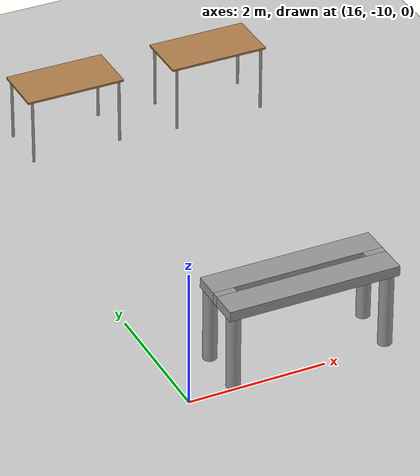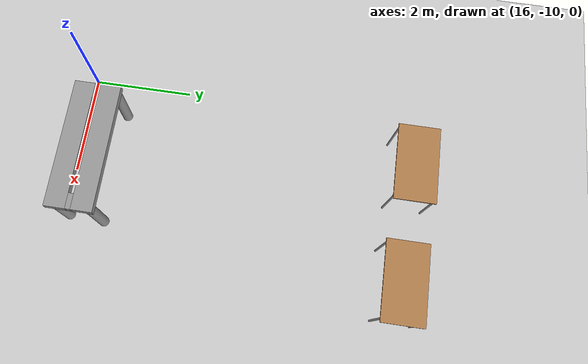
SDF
<sdf version="1.6">
 <world name="default">
  <model name="ground_plane">
   <static>1</static>
   <link name="link">
    <collision name="collision">
     <geometry><plane><normal>0 0 1</normal><size>100 100</size></plane></geometry>
     <surface><friction><ode><mu>100</mu><mu2>50</mu2></ode></friction></surface>
    </collision>
    <visual name="visual">
     <cast_shadows>0</cast_shadows>
     <geometry><plane><normal>0 0 1</normal><size>100 100</size></plane></geometry>
     <material>
      <script><uri>file://media/materials/scripts/gazebo.material</uri><name>Gazebo/Grey</name></script>
     </material>
    </visual>
   </link>
  </model>
  <model name="table_9">
   <static>1</static>
   <link name="link">
    <collision name="surface">
     <pose>0 0 1 0 -0 0</pose>
     <geometry><box><size>1.5 0.8 0.03</size></box></geometry>
     <surface><friction><ode><mu>0.6</mu><mu2>0.6</mu2></ode></friction></surface>
    </collision>
    <visual name="visual1">
     <pose>0 0 1 0 -0 0</pose>
     <geometry><box><size>1.5 0.8 0.03</size></box></geometry>
     <material>
      <script><uri>file://media/materials/scripts/gazebo.material</uri><name>Gazebo/Wood</name></script>
     </material>
    </visual>
    <collision name="front_left_leg">
     <pose>0.68 0.38 0.5 0 -0 0</pose>
     <geometry><cylinder><radius>0.02</radius><length>1</length></cylinder></geometry>
    </collision>
    <visual name="front_left_leg">
     <pose>0.68 0.38 0.5 0 -0 0</pose>
     <geometry><cylinder><radius>0.02</radius><length>1</length></cylinder></geometry>
     <material>
      <script><uri>file://media/materials/scripts/gazebo.material</uri><name>Gazebo/Grey</name></script>
     </material>
    </visual>
    <collision name="front_right_leg">
     <pose>0.68 -0.38 0.5 0 -0 0</pose>
     <geometry><cylinder><radius>0.02</radius><length>1</length></cylinder></geometry>
    </collision>
    <visual name="front_right_leg">
     <pose>0.68 -0.38 0.5 0 -0 0</pose>
     <geometry><cylinder><radius>0.02</radius><length>1</length></cylinder></geometry>
     <material>
      <script><uri>file://media/materials/scripts/gazebo.material</uri><name>Gazebo/Grey</name></script>
     </material>
    </visual>
    <collision name="back_right_leg">
     <pose>-0.68 -0.38 0.5 0 -0 0</pose>
     <geometry><cylinder><radius>0.02</radius><length>1</length></cylinder></geometry>
    </collision>
    <visual name="back_right_leg">
     <pose>-0.68 -0.38 0.5 0 -0 0</pose>
     <geometry><cylinder><radius>0.02</radius><length>1</length></cylinder></geometry>
     <material>
      <script><uri>file://media/materials/scripts/gazebo.material</uri><name>Gazebo/Grey</name></script>
     </material>
    </visual>
    <collision name="back_left_leg">
     <pose>-0.68 0.38 0.5 0 -0 0</pose>
     <geometry><cylinder><radius>0.02</radius><length>1</length></cylinder></geometry>
    </collision>
    <visual name="back_left_leg">
     <pose>-0.68 0.38 0.5 0 -0 0</pose>
     <geometry><cylinder><radius>0.02</radius><length>1</length></cylinder></geometry>
     <material>
      <script><uri>file://media/materials/scripts/gazebo.material</uri><name>Gazebo/Grey</name></script>
     </material>
    </visual>
   </link>
   <pose>17.1959 -3.33595 0 0 -0 0</pose>
  </model>
  <model name="table_10">
   <static>1</static>
   <link name="link">
    <collision name="surface">
     <pose>0 0 1 0 -0 0</pose>
     <geometry><box><size>1.5 0.8 0.03</size></box></geometry>
     <surface><friction><ode><mu>0.6</mu><mu2>0.6</mu2></ode></friction></surface>
    </collision>
    <visual name="visual1">
     <pose>0 0 1 0 -0 0</pose>
     <geometry><box><size>1.5 0.8 0.03</size></box></geometry>
     <material>
      <script><uri>file://media/materials/scripts/gazebo.material</uri><name>Gazebo/Wood</name></script>
     </material>
    </visual>
    <collision name="front_left_leg">
     <pose>0.68 0.38 0.5 0 -0 0</pose>
     <geometry><cylinder><radius>0.02</radius><length>1</length></cylinder></geometry>
    </collision>
    <visual name="front_left_leg">
     <pose>0.68 0.38 0.5 0 -0 0</pose>
     <geometry><cylinder><radius>0.02</radius><length>1</length></cylinder></geometry>
     <material>
      <script><uri>file://media/materials/scripts/gazebo.material</uri><name>Gazebo/Grey</name></script>
     </material>
    </visual>
    <collision name="front_right_leg">
     <pose>0.68 -0.38 0.5 0 -0 0</pose>
     <geometry><cylinder><radius>0.02</radius><length>1</length></cylinder></geometry>
    </collision>
    <visual name="front_right_leg">
     <pose>0.68 -0.38 0.5 0 -0 0</pose>
     <geometry><cylinder><radius>0.02</radius><length>1</length></cylinder></geometry>
     <material>
      <script><uri>file://media/materials/scripts/gazebo.material</uri><name>Gazebo/Grey</name></script>
     </material>
    </visual>
    <collision name="back_right_leg">
     <pose>-0.68 -0.38 0.5 0 -0 0</pose>
     <geometry><cylinder><radius>0.02</radius><length>1</length></cylinder></geometry>
    </collision>
    <visual name="back_right_leg">
     <pose>-0.68 -0.38 0.5 0 -0 0</pose>
     <geometry><cylinder><radius>0.02</radius><length>1</length></cylinder></geometry>
     <material>
      <script><uri>file://media/materials/scripts/gazebo.material</uri><name>Gazebo/Grey</name></script>
     </material>
    </visual>
    <collision name="back_left_leg">
     <pose>-0.68 0.38 0.5 0 -0 0</pose>
     <geometry><cylinder><radius>0.02</radius><length>1</length></cylinder></geometry>
    </collision>
    <visual name="back_left_leg">
     <pose>-0.68 0.38 0.5 0 -0 0</pose>
     <geometry><cylinder><radius>0.02</radius><length>1</length></cylinder></geometry>
     <material>
      <script><uri>file://media/materials/scripts/gazebo.material</uri><name>Gazebo/Grey</name></script>
     </material>
    </visual>
   </link>
   <pose>19.4515 -3.39812 0 0 -0 0</pose>
  </model>
  <model name="work_table_3">
   <link name="link_0">
    <pose>1.115 -0.35 -0.3125 0 -0 0</pose>
    <inertial>
     <mass>1</mass>
     <inertia><ixx>0.145833</ixx><ixy>0</ixy><ixz>0</ixz><iyy>0.145833</iyy><iyz>0</iyz><izz>0.125</izz></inertia>
    </inertial>
    <visual name="visual">
     <geometry><cylinder><radius>0.1</radius><length>1.1</length></cylinder></geometry>
     <material>
      <lighting>1</lighting>
      <script><uri>file://media/materials/scripts/gazebo.material</uri><name>Gazebo/Grey</name></script>
      <ambient>0.3 0.3 0.3 1</ambient>
      <diffuse>0.7 0.7 0.7 1</diffuse>
      <specular>0.01 0.01 0.01 1</specular>
      <emissive>0 0 0 1</emissive>
      <shader type="vertex"><normal_map>__default__</normal_map></shader>
     </material>
    </visual>
    <collision name="collision">
     <geometry><cylinder><radius>0.1</radius><length>1.1</length></cylinder></geometry>
     <surface>
      <friction>
       <ode><mu>1</mu><mu2>1</mu2><fdir1>0 0 0</fdir1><slip1>0</slip1><slip2>0</slip2></ode>
       <torsional>
        <coefficient>1</coefficient>
        <patch_radius>0</patch_radius>
        <surface_radius>0</surface_radius>
        <use_patch_radius>1</use_patch_radius>
        <ode><slip>0</slip></ode>
       </torsional>
      </friction>
      <bounce><restitution_coefficient>0</restitution_coefficient><threshold>1e+06</threshold></bounce>
      <contact>
       <collide_without_contact>0</collide_without_contact>
       <collide_without_contact_bitmask>1</collide_without_contact_bitmask>
       <collide_bitmask>1</collide_bitmask>
       <ode>
        <soft_cfm>0</soft_cfm>
        <soft_erp>0.2</soft_erp>
        <kp>1e+13</kp>
        <kd>1</kd>
        <max_vel>0.01</max_vel>
        <min_depth>0</min_depth>
       </ode>
       <bullet>
        <split_impulse>1</split_impulse>
        <split_impulse_penetration_threshold>-0.01</split_impulse_penetration_threshold>
        <soft_cfm>0</soft_cfm>
        <soft_erp>0.2</soft_erp>
        <kp>1e+13</kp>
        <kd>1</kd>
       </bullet>
      </contact>
     </surface>
    </collision>
   </link>
   <link name="link_0_clone">
    <pose>-1.145 -0.35 -0.3125 0 -0 0</pose>
    <inertial>
     <mass>1</mass>
     <inertia><ixx>0.145833</ixx><ixy>0</ixy><ixz>0</ixz><iyy>0.145833</iyy><iyz>0</iyz><izz>0.125</izz></inertia>
    </inertial>
    <visual name="visual">
     <geometry><cylinder><radius>0.1</radius><length>1.1</length></cylinder></geometry>
     <material>
      <lighting>1</lighting>
      <script><uri>file://media/materials/scripts/gazebo.material</uri><name>Gazebo/Grey</name></script>
      <ambient>0.3 0.3 0.3 1</ambient>
      <diffuse>0.7 0.7 0.7 1</diffuse>
      <specular>0.01 0.01 0.01 1</specular>
      <emissive>0 0 0 1</emissive>
      <shader type="vertex"><normal_map>__default__</normal_map></shader>
     </material>
    </visual>
    <collision name="collision">
     <geometry><cylinder><radius>0.1</radius><length>1.1</length></cylinder></geometry>
     <surface>
      <friction>
       <ode><mu>1</mu><mu2>1</mu2><fdir1>0 0 0</fdir1><slip1>0</slip1><slip2>0</slip2></ode>
       <torsional>
        <coefficient>1</coefficient>
        <patch_radius>0</patch_radius>
        <surface_radius>0</surface_radius>
        <use_patch_radius>1</use_patch_radius>
        <ode><slip>0</slip></ode>
       </torsional>
      </friction>
      <bounce><restitution_coefficient>0</restitution_coefficient><threshold>1e+06</threshold></bounce>
      <contact>
       <collide_without_contact>0</collide_without_contact>
       <collide_without_contact_bitmask>1</collide_without_contact_bitmask>
       <collide_bitmask>1</collide_bitmask>
       <ode>
        <soft_cfm>0</soft_cfm>
        <soft_erp>0.2</soft_erp>
        <kp>1e+13</kp>
        <kd>1</kd>
        <max_vel>0.01</max_vel>
        <min_depth>0</min_depth>
       </ode>
       <bullet>
        <split_impulse>1</split_impulse>
        <split_impulse_penetration_threshold>-0.01</split_impulse_penetration_threshold>
        <soft_cfm>0</soft_cfm>
        <soft_erp>0.2</soft_erp>
        <kp>1e+13</kp>
        <kd>1</kd>
       </bullet>
      </contact>
     </surface>
    </collision>
   </link>
   <link name="link_0_clone_0">
    <pose>-1.145 0.35 -0.3125 0 -0 0</pose>
    <inertial>
     <mass>1</mass>
     <inertia><ixx>0.145833</ixx><ixy>0</ixy><ixz>0</ixz><iyy>0.145833</iyy><iyz>0</iyz><izz>0.125</izz></inertia>
    </inertial>
    <visual name="visual">
     <geometry><cylinder><radius>0.1</radius><length>1.1</length></cylinder></geometry>
     <material>
      <lighting>1</lighting>
      <script><uri>file://media/materials/scripts/gazebo.material</uri><name>Gazebo/Grey</name></script>
      <ambient>0.3 0.3 0.3 1</ambient>
      <diffuse>0.7 0.7 0.7 1</diffuse>
      <specular>0.01 0.01 0.01 1</specular>
      <emissive>0 0 0 1</emissive>
      <shader type="vertex"><normal_map>__default__</normal_map></shader>
     </material>
    </visual>
    <collision name="collision">
     <geometry><cylinder><radius>0.1</radius><length>1.1</length></cylinder></geometry>
     <surface>
      <friction>
       <ode><mu>1</mu><mu2>1</mu2><fdir1>0 0 0</fdir1><slip1>0</slip1><slip2>0</slip2></ode>
       <torsional>
        <coefficient>1</coefficient>
        <patch_radius>0</patch_radius>
        <surface_radius>0</surface_radius>
        <use_patch_radius>1</use_patch_radius>
        <ode><slip>0</slip></ode>
       </torsional>
      </friction>
      <bounce><restitution_coefficient>0</restitution_coefficient><threshold>1e+06</threshold></bounce>
      <contact>
       <collide_without_contact>0</collide_without_contact>
       <collide_without_contact_bitmask>1</collide_without_contact_bitmask>
       <collide_bitmask>1</collide_bitmask>
       <ode>
        <soft_cfm>0</soft_cfm>
        <soft_erp>0.2</soft_erp>
        <kp>1e+13</kp>
        <kd>1</kd>
        <max_vel>0.01</max_vel>
        <min_depth>0</min_depth>
       </ode>
       <bullet>
        <split_impulse>1</split_impulse>
        <split_impulse_penetration_threshold>-0.01</split_impulse_penetration_threshold>
        <soft_cfm>0</soft_cfm>
        <soft_erp>0.2</soft_erp>
        <kp>1e+13</kp>
        <kd>1</kd>
       </bullet>
      </contact>
     </surface>
    </collision>
   </link>
   <link name="link_0_clone_1">
    <pose>1.155 0.35 -0.3125 0 -0 0</pose>
    <inertial>
     <mass>1</mass>
     <inertia><ixx>0.145833</ixx><ixy>0</ixy><ixz>0</ixz><iyy>0.145833</iyy><iyz>0</iyz><izz>0.125</izz></inertia>
    </inertial>
    <visual name="visual">
     <geometry><cylinder><radius>0.1</radius><length>1.1</length></cylinder></geometry>
     <material>
      <lighting>1</lighting>
      <script><uri>file://media/materials/scripts/gazebo.material</uri><name>Gazebo/Grey</name></script>
      <ambient>0.3 0.3 0.3 1</ambient>
      <diffuse>0.7 0.7 0.7 1</diffuse>
      <specular>0.01 0.01 0.01 1</specular>
      <emissive>0 0 0 1</emissive>
      <shader type="vertex"><normal_map>__default__</normal_map></shader>
     </material>
    </visual>
    <collision name="collision">
     <geometry><cylinder><radius>0.1</radius><length>1.1</length></cylinder></geometry>
     <surface>
      <friction>
       <ode><mu>1</mu><mu2>1</mu2><fdir1>0 0 0</fdir1><slip1>0</slip1><slip2>0</slip2></ode>
       <torsional>
        <coefficient>1</coefficient>
        <patch_radius>0</patch_radius>
        <surface_radius>0</surface_radius>
        <use_patch_radius>1</use_patch_radius>
        <ode><slip>0</slip></ode>
       </torsional>
      </friction>
      <bounce><restitution_coefficient>0</restitution_coefficient><threshold>1e+06</threshold></bounce>
      <contact>
       <collide_without_contact>0</collide_without_contact>
       <collide_without_contact_bitmask>1</collide_without_contact_bitmask>
       <collide_bitmask>1</collide_bitmask>
       <ode>
        <soft_cfm>0</soft_cfm>
        <soft_erp>0.2</soft_erp>
        <kp>1e+13</kp>
        <kd>1</kd>
        <max_vel>0.01</max_vel>
        <min_depth>0</min_depth>
       </ode>
       <bullet>
        <split_impulse>1</split_impulse>
        <split_impulse_penetration_threshold>-0.01</split_impulse_penetration_threshold>
        <soft_cfm>0</soft_cfm>
        <soft_erp>0.2</soft_erp>
        <kp>1e+13</kp>
        <kd>1</kd>
       </bullet>
      </contact>
     </surface>
    </collision>
   </link>
   <link name="link_1">
    <pose>0.005 -0.25 0.3125 0 -0 0</pose>
    <inertial>
     <mass>1</mass>
     <inertia>
      <ixx>0.166667</ixx>
      <ixy>0</ixy>
      <ixz>0</ixz>
      <iyy>0.166667</iyy>
      <iyz>0</iyz>
      <izz>0.166667</izz>
     </inertia>
    </inertial>
    <visual name="visual">
     <geometry><box><size>2.5 0.4 0.15</size></box></geometry>
     <material>
      <lighting>1</lighting>
      <script><uri>file://media/materials/scripts/gazebo.material</uri><name>Gazebo/Grey</name></script>
      <ambient>0.3 0.3 0.3 1</ambient>
      <diffuse>0.7 0.7 0.7 1</diffuse>
      <specular>0.01 0.01 0.01 1</specular>
      <emissive>0 0 0 1</emissive>
      <shader type="vertex"><normal_map>__default__</normal_map></shader>
     </material>
    </visual>
    <collision name="collision">
     <geometry><box><size>2.5 0.4 0.15</size></box></geometry>
     <surface>
      <friction>
       <ode><mu>1</mu><mu2>1</mu2><fdir1>0 0 0</fdir1><slip1>0</slip1><slip2>0</slip2></ode>
       <torsional>
        <coefficient>1</coefficient>
        <patch_radius>0</patch_radius>
        <surface_radius>0</surface_radius>
        <use_patch_radius>1</use_patch_radius>
        <ode><slip>0</slip></ode>
       </torsional>
      </friction>
      <bounce><restitution_coefficient>0</restitution_coefficient><threshold>1e+06</threshold></bounce>
      <contact>
       <collide_without_contact>0</collide_without_contact>
       <collide_without_contact_bitmask>1</collide_without_contact_bitmask>
       <collide_bitmask>1</collide_bitmask>
       <ode>
        <soft_cfm>0</soft_cfm>
        <soft_erp>0.2</soft_erp>
        <kp>1e+13</kp>
        <kd>1</kd>
        <max_vel>0.01</max_vel>
        <min_depth>0</min_depth>
       </ode>
       <bullet>
        <split_impulse>1</split_impulse>
        <split_impulse_penetration_threshold>-0.01</split_impulse_penetration_threshold>
        <soft_cfm>0</soft_cfm>
        <soft_erp>0.2</soft_erp>
        <kp>1e+13</kp>
        <kd>1</kd>
       </bullet>
      </contact>
     </surface>
    </collision>
   </link>
   <link name="link_1_clone">
    <pose>0.005 0.25 0.3125 0 -0 0</pose>
    <inertial>
     <mass>1</mass>
     <inertia>
      <ixx>0.166667</ixx>
      <ixy>0</ixy>
      <ixz>0</ixz>
      <iyy>0.166667</iyy>
      <iyz>0</iyz>
      <izz>0.166667</izz>
     </inertia>
    </inertial>
    <visual name="visual">
     <geometry><box><size>2.5 0.4 0.15</size></box></geometry>
     <material>
      <lighting>1</lighting>
      <script><uri>file://media/materials/scripts/gazebo.material</uri><name>Gazebo/Grey</name></script>
      <ambient>0.3 0.3 0.3 1</ambient>
      <diffuse>0.7 0.7 0.7 1</diffuse>
      <specular>0.01 0.01 0.01 1</specular>
      <emissive>0 0 0 1</emissive>
      <shader type="vertex"><normal_map>__default__</normal_map></shader>
     </material>
    </visual>
    <collision name="collision">
     <geometry><box><size>2.5 0.4 0.15</size></box></geometry>
     <surface>
      <friction>
       <ode><mu>1</mu><mu2>1</mu2><fdir1>0 0 0</fdir1><slip1>0</slip1><slip2>0</slip2></ode>
       <torsional>
        <coefficient>1</coefficient>
        <patch_radius>0</patch_radius>
        <surface_radius>0</surface_radius>
        <use_patch_radius>1</use_patch_radius>
        <ode><slip>0</slip></ode>
       </torsional>
      </friction>
      <bounce><restitution_coefficient>0</restitution_coefficient><threshold>1e+06</threshold></bounce>
      <contact>
       <collide_without_contact>0</collide_without_contact>
       <collide_without_contact_bitmask>1</collide_without_contact_bitmask>
       <collide_bitmask>1</collide_bitmask>
       <ode>
        <soft_cfm>0</soft_cfm>
        <soft_erp>0.2</soft_erp>
        <kp>1e+13</kp>
        <kd>1</kd>
        <max_vel>0.01</max_vel>
        <min_depth>0</min_depth>
       </ode>
       <bullet>
        <split_impulse>1</split_impulse>
        <split_impulse_penetration_threshold>-0.01</split_impulse_penetration_threshold>
        <soft_cfm>0</soft_cfm>
        <soft_erp>0.2</soft_erp>
        <kp>1e+13</kp>
        <kd>1</kd>
       </bullet>
      </contact>
     </surface>
    </collision>
   </link>
   <link name="link_1_clone_0">
    <pose>-1.095 0 0.3125 0 -0 0</pose>
    <inertial>
     <mass>1</mass>
     <inertia>
      <ixx>0.166667</ixx>
      <ixy>0</ixy>
      <ixz>0</ixz>
      <iyy>0.166667</iyy>
      <iyz>0</iyz>
      <izz>0.166667</izz>
     </inertia>
    </inertial>
    <visual name="visual">
     <geometry><box><size>0.3 0.1 0.15</size></box></geometry>
     <material>
      <lighting>1</lighting>
      <script><uri>file://media/materials/scripts/gazebo.material</uri><name>Gazebo/Grey</name></script>
      <ambient>0.3 0.3 0.3 1</ambient>
      <diffuse>0.7 0.7 0.7 1</diffuse>
      <specular>0.01 0.01 0.01 1</specular>
      <emissive>0 0 0 1</emissive>
      <shader type="vertex"><normal_map>__default__</normal_map></shader>
     </material>
    </visual>
    <collision name="collision">
     <geometry><box><size>0.3 0.1 0.15</size></box></geometry>
     <surface>
      <friction>
       <ode><mu>1</mu><mu2>1</mu2><fdir1>0 0 0</fdir1><slip1>0</slip1><slip2>0</slip2></ode>
       <torsional>
        <coefficient>1</coefficient>
        <patch_radius>0</patch_radius>
        <surface_radius>0</surface_radius>
        <use_patch_radius>1</use_patch_radius>
        <ode><slip>0</slip></ode>
       </torsional>
      </friction>
      <bounce><restitution_coefficient>0</restitution_coefficient><threshold>1e+06</threshold></bounce>
      <contact>
       <collide_without_contact>0</collide_without_contact>
       <collide_without_contact_bitmask>1</collide_without_contact_bitmask>
       <collide_bitmask>1</collide_bitmask>
       <ode>
        <soft_cfm>0</soft_cfm>
        <soft_erp>0.2</soft_erp>
        <kp>1e+13</kp>
        <kd>1</kd>
        <max_vel>0.01</max_vel>
        <min_depth>0</min_depth>
       </ode>
       <bullet>
        <split_impulse>1</split_impulse>
        <split_impulse_penetration_threshold>-0.01</split_impulse_penetration_threshold>
        <soft_cfm>0</soft_cfm>
        <soft_erp>0.2</soft_erp>
        <kp>1e+13</kp>
        <kd>1</kd>
       </bullet>
      </contact>
     </surface>
    </collision>
   </link>
   <link name="link_1_clone_0_clone">
    <pose>1.105 0 0.3125 0 -0 0</pose>
    <inertial>
     <mass>1</mass>
     <inertia>
      <ixx>0.166667</ixx>
      <ixy>0</ixy>
      <ixz>0</ixz>
      <iyy>0.166667</iyy>
      <iyz>0</iyz>
      <izz>0.166667</izz>
     </inertia>
    </inertial>
    <visual name="visual">
     <geometry><box><size>0.3 0.1 0.15</size></box></geometry>
     <material>
      <lighting>1</lighting>
      <script><uri>file://media/materials/scripts/gazebo.material</uri><name>Gazebo/Grey</name></script>
      <ambient>0.3 0.3 0.3 1</ambient>
      <diffuse>0.7 0.7 0.7 1</diffuse>
      <specular>0.01 0.01 0.01 1</specular>
      <emissive>0 0 0 1</emissive>
      <shader type="vertex"><normal_map>__default__</normal_map></shader>
     </material>
    </visual>
    <collision name="collision">
     <geometry><box><size>0.3 0.1 0.15</size></box></geometry>
     <surface>
      <friction>
       <ode><mu>1</mu><mu2>1</mu2><fdir1>0 0 0</fdir1><slip1>0</slip1><slip2>0</slip2></ode>
       <torsional>
        <coefficient>1</coefficient>
        <patch_radius>0</patch_radius>
        <surface_radius>0</surface_radius>
        <use_patch_radius>1</use_patch_radius>
        <ode><slip>0</slip></ode>
       </torsional>
      </friction>
      <bounce><restitution_coefficient>0</restitution_coefficient><threshold>1e+06</threshold></bounce>
      <contact>
       <collide_without_contact>0</collide_without_contact>
       <collide_without_contact_bitmask>1</collide_without_contact_bitmask>
       <collide_bitmask>1</collide_bitmask>
       <ode>
        <soft_cfm>0</soft_cfm>
        <soft_erp>0.2</soft_erp>
        <kp>1e+13</kp>
        <kd>1</kd>
        <max_vel>0.01</max_vel>
        <min_depth>0</min_depth>
       </ode>
       <bullet>
        <split_impulse>1</split_impulse>
        <split_impulse_penetration_threshold>-0.01</split_impulse_penetration_threshold>
        <soft_cfm>0</soft_cfm>
        <soft_erp>0.2</soft_erp>
        <kp>1e+13</kp>
        <kd>1</kd>
       </bullet>
      </contact>
     </surface>
    </collision>
   </link>
   <joint name="link_1_JOINT_0" type="fixed">
    <parent>link_1</parent>
    <child>link_1_clone_0</child>
    <physics>
     <ode><limit><cfm>0</cfm><erp>0.2</erp></limit><suspension><cfm>0</cfm><erp>0.2</erp></suspension></ode>
    </physics>
   </joint>
   <joint name="link_1_JOINT_1" type="fixed">
    <parent>link_1</parent>
    <child>link_1_clone_0_clone</child>
    <physics>
     <ode><limit><cfm>0</cfm><erp>0.2</erp></limit><suspension><cfm>0</cfm><erp>0.2</erp></suspension></ode>
    </physics>
   </joint>
   <joint name="link_1_JOINT_2" type="fixed">
    <parent>link_1</parent>
    <child>link_1_clone</child>
    <physics>
     <ode><limit><cfm>0</cfm><erp>0.2</erp></limit><suspension><cfm>0</cfm><erp>0.2</erp></suspension></ode>
    </physics>
   </joint>
   <joint name="link_1_JOINT_3" type="fixed">
    <parent>link_1</parent>
    <child>link_0_clone</child>
    <physics>
     <ode><limit><cfm>0</cfm><erp>0.2</erp></limit><suspension><cfm>0</cfm><erp>0.2</erp></suspension></ode>
    </physics>
   </joint>
   <joint name="link_1_JOINT_4" type="fixed">
    <parent>link_1</parent>
    <child>link_0</child>
    <physics>
     <ode><limit><cfm>0</cfm><erp>0.2</erp></limit><suspension><cfm>0</cfm><erp>0.2</erp></suspension></ode>
    </physics>
   </joint>
   <joint name="link_1_clone_JOINT_5" type="fixed">
    <parent>link_1_clone</parent>
    <child>link_0_clone_0</child>
    <physics>
     <ode><limit><cfm>0</cfm><erp>0.2</erp></limit><suspension><cfm>0</cfm><erp>0.2</erp></suspension></ode>
    </physics>
   </joint>
   <joint name="link_1_clone_JOINT_6" type="fixed">
    <parent>link_1_clone</parent>
    <child>link_0_clone_1</child>
    <physics>
     <ode><limit><cfm>0</cfm><erp>0.2</erp></limit><suspension><cfm>0</cfm><erp>0.2</erp></suspension></ode>
    </physics>
   </joint>
   <static>0</static>
   <pose>17.834 -9.55429 0.8625 -1e-06 0 0.000498</pose>
  </model>
 </world>
</sdf>
